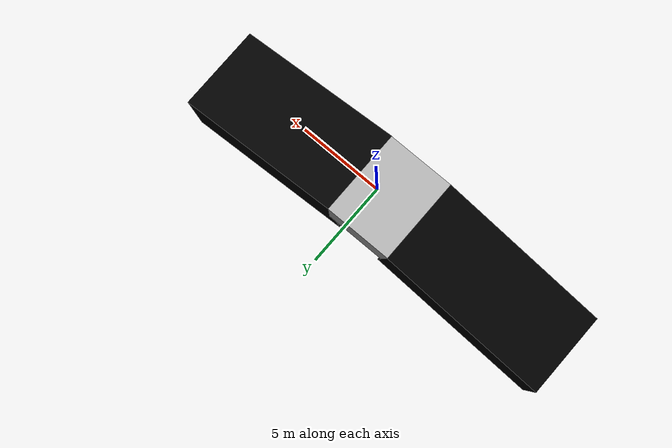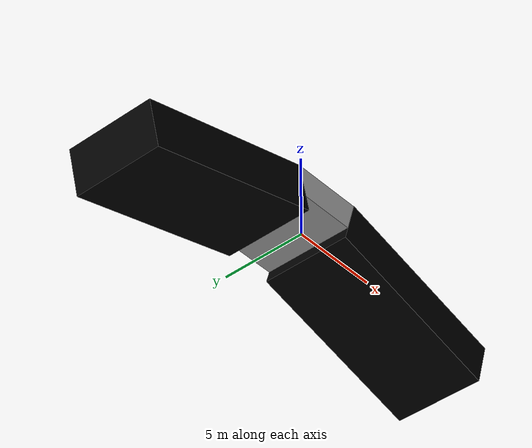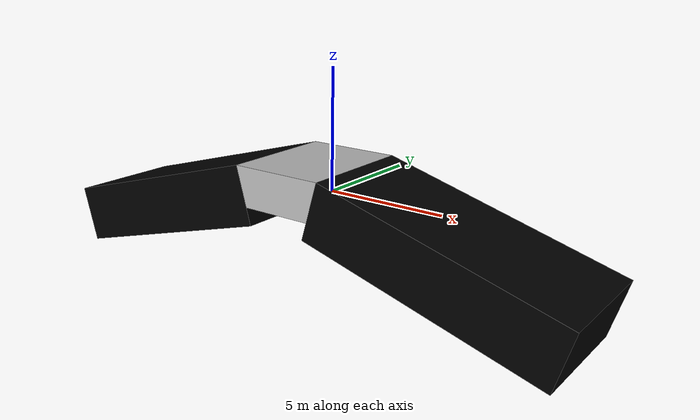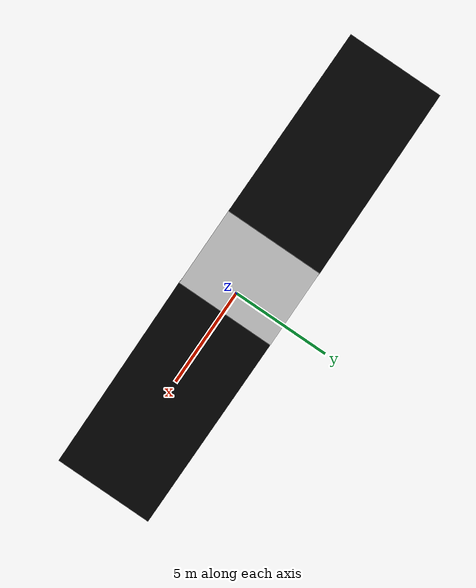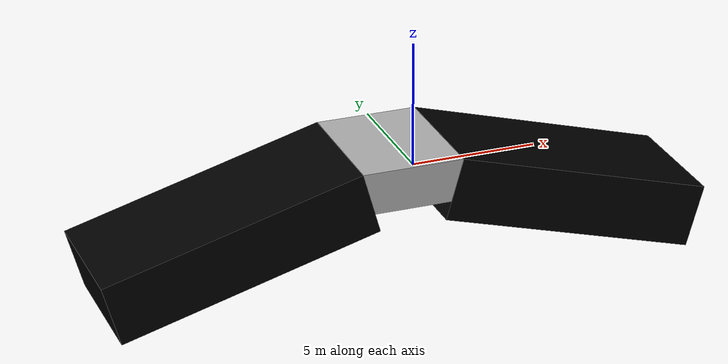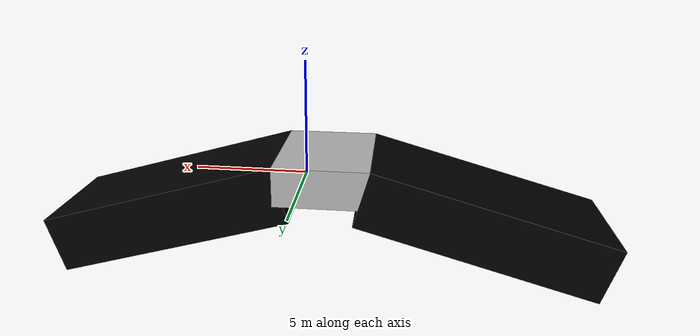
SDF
<?xml version='1.0'?>
<sdf version='1.7'>
  <model name='slope_ros2_paper'>
    <link name='slope_down'>
      <pose>5.84019 0.081427 -1.54904 0 0.2779 0</pose>
      <self_collide>0</self_collide>
      <kinematic>0</kinematic>
      <gravity>1</gravity>
      <enable_wind>0</enable_wind>
      <inertial>
        <inertia>
          <ixx>0</ixx>
          <ixy>0</ixy>
          <ixz>0</ixz>
          <iyy>0</iyy>
          <iyz>0</iyz>
          <izz>0</izz>
        </inertia>
        <mass>0</mass>
        <pose>0 0 0 0 -0 0</pose>
      </inertial>
      <visual name='visual'>
        <geometry>
          <box>
            <size>10.6012 5.12132 2.52711</size>
          </box>
        </geometry>
        <material>
          <shader type='pixel'>
            <normal_map>__default__</normal_map>
          </shader>
          <script>
            <name>ModelPreview_1::slope_down::visual_MATERIAL_</name>
          </script>
          <ambient>0 0 0 1</ambient>
          <diffuse>0 0 0 1</diffuse>
          <specular>0 0 0 1</specular>
          <emissive>0 0 0 1</emissive>
        </material>
        <pose>0 0 0 0 -0 0</pose>
        <transparency>0</transparency>
        <cast_shadows>1</cast_shadows>
      </visual>
      <collision name='collision'>
        <laser_retro>0</laser_retro>
        <max_contacts>10</max_contacts>
        <pose>0 0 0 0 -0 0</pose>
        <geometry>
          <box>
            <size>10.6012 5.12132 2.52711</size>
          </box>
        </geometry>
        <surface>
          <friction>
            <ode>
              <mu>1</mu>
              <mu2>1</mu2>
              <fdir1>0 0 0</fdir1>
              <slip1>0</slip1>
              <slip2>0</slip2>
            </ode>
            <torsional>
              <coefficient>1</coefficient>
              <patch_radius>0</patch_radius>
              <surface_radius>0</surface_radius>
              <use_patch_radius>1</use_patch_radius>
              <ode>
                <slip>0</slip>
              </ode>
            </torsional>
          </friction>
          <bounce>
            <restitution_coefficient>0</restitution_coefficient>
            <threshold>1e+06</threshold>
          </bounce>
          <contact>
            <collide_without_contact>0</collide_without_contact>
            <collide_without_contact_bitmask>1</collide_without_contact_bitmask>
            <collide_bitmask>1</collide_bitmask>
            <ode>
              <soft_cfm>0</soft_cfm>
              <soft_erp>0.2</soft_erp>
              <kp>1e+13</kp>
              <kd>1</kd>
              <max_vel>0.01</max_vel>
              <min_depth>0</min_depth>
            </ode>
            <bullet>
              <split_impulse>1</split_impulse>
              <split_impulse_penetration_threshold>-0.01</split_impulse_penetration_threshold>
              <soft_cfm>0</soft_cfm>
              <soft_erp>0.2</soft_erp>
              <kp>1e+13</kp>
              <kd>1</kd>
            </bullet>
          </contact>
        </surface>
      </collision>
    </link>
    <link name='slope_down_clone'>
      <pose>-7.70299 0.098646 -1.53856 0 -0.274841 0</pose>
      <self_collide>0</self_collide>
      <kinematic>0</kinematic>
      <gravity>1</gravity>
      <enable_wind>0</enable_wind>
      <inertial>
        <inertia>
          <ixx>0</ixx>
          <ixy>0</ixy>
          <ixz>0</ixz>
          <iyy>0</iyy>
          <iyz>0</iyz>
          <izz>0</izz>
        </inertia>
        <mass>0</mass>
        <pose>0 0 0 0 -0 0</pose>
      </inertial>
      <visual name='visual'>
        <geometry>
          <box>
            <size>10.6012 5.12132 2.52711</size>
          </box>
        </geometry>
        <material>
          <shader type='pixel'>
            <normal_map>__default__</normal_map>
          </shader>
          <script>
            <name>ModelPreview_1::slope_down_clone::visual_MATERIAL_</name>
          </script>
          <ambient>0 0 0 1</ambient>
          <diffuse>0 0 0 1</diffuse>
          <specular>0 0 0 1</specular>
          <emissive>0 0 0 1</emissive>
        </material>
        <pose>0 0 0 0 -0 0</pose>
        <transparency>0</transparency>
        <cast_shadows>1</cast_shadows>
      </visual>
      <collision name='collision'>
        <laser_retro>0</laser_retro>
        <max_contacts>10</max_contacts>
        <pose>0 0 0 0 -0 0</pose>
        <geometry>
          <box>
            <size>10.6012 5.12132 2.52711</size>
          </box>
        </geometry>
        <surface>
          <friction>
            <ode>
              <mu>1</mu>
              <mu2>1</mu2>
              <fdir1>0 0 0</fdir1>
              <slip1>0</slip1>
              <slip2>0</slip2>
            </ode>
            <torsional>
              <coefficient>1</coefficient>
              <patch_radius>0</patch_radius>
              <surface_radius>0</surface_radius>
              <use_patch_radius>1</use_patch_radius>
              <ode>
                <slip>0</slip>
              </ode>
            </torsional>
          </friction>
          <bounce>
            <restitution_coefficient>0</restitution_coefficient>
            <threshold>1e+06</threshold>
          </bounce>
          <contact>
            <collide_without_contact>0</collide_without_contact>
            <collide_without_contact_bitmask>1</collide_without_contact_bitmask>
            <collide_bitmask>1</collide_bitmask>
            <ode>
              <soft_cfm>0</soft_cfm>
              <soft_erp>0.2</soft_erp>
              <kp>1e+13</kp>
              <kd>1</kd>
              <max_vel>0.01</max_vel>
              <min_depth>0</min_depth>
            </ode>
            <bullet>
              <split_impulse>1</split_impulse>
              <split_impulse_penetration_threshold>-0.01</split_impulse_penetration_threshold>
              <soft_cfm>0</soft_cfm>
              <soft_erp>0.2</soft_erp>
              <kp>1e+13</kp>
              <kd>1</kd>
            </bullet>
          </contact>
        </surface>
      </collision>
    </link>
    <link name='slope_zero'>
      <pose>-0.925749 0.091754 0.271552 0 -0 0</pose>
      <self_collide>0</self_collide>
      <kinematic>0</kinematic>
      <gravity>1</gravity>
      <enable_wind>0</enable_wind>
      <inertial>
        <inertia>
          <ixx>0</ixx>
          <ixy>0</ixy>
          <ixz>0</ixz>
          <iyy>0</iyy>
          <iyz>0</iyz>
          <izz>0</izz>
        </inertia>
        <mass>0</mass>
        <pose>0 0 0 0 -0 0</pose>
      </inertial>
      <visual name='visual'>
        <geometry>
          <box>
            <size>4.02292 5.10715 1.69097</size>
          </box>
        </geometry>
        <material>
          <shader type='pixel'>
            <normal_map>__default__</normal_map>
          </shader>
        </material>
        <pose>0 0 0 0 -0 0</pose>
        <transparency>0</transparency>
        <cast_shadows>1</cast_shadows>
      </visual>
      <collision name='collision'>
        <laser_retro>0</laser_retro>
        <max_contacts>10</max_contacts>
        <pose>0 0 0 0 -0 0</pose>
        <geometry>
          <box>
            <size>4.02292 5.10715 1.69097</size>
          </box>
        </geometry>
        <surface>
          <friction>
            <ode>
              <mu>1</mu>
              <mu2>1</mu2>
              <fdir1>0 0 0</fdir1>
              <slip1>0</slip1>
              <slip2>0</slip2>
            </ode>
            <torsional>
              <coefficient>1</coefficient>
              <patch_radius>0</patch_radius>
              <surface_radius>0</surface_radius>
              <use_patch_radius>1</use_patch_radius>
              <ode>
                <slip>0</slip>
              </ode>
            </torsional>
          </friction>
          <bounce>
            <restitution_coefficient>0</restitution_coefficient>
            <threshold>1e+06</threshold>
          </bounce>
          <contact>
            <collide_without_contact>0</collide_without_contact>
            <collide_without_contact_bitmask>1</collide_without_contact_bitmask>
            <collide_bitmask>1</collide_bitmask>
            <ode>
              <soft_cfm>0</soft_cfm>
              <soft_erp>0.2</soft_erp>
              <kp>1e+13</kp>
              <kd>1</kd>
              <max_vel>0.01</max_vel>
              <min_depth>0</min_depth>
            </ode>
            <bullet>
              <split_impulse>1</split_impulse>
              <split_impulse_penetration_threshold>-0.01</split_impulse_penetration_threshold>
              <soft_cfm>0</soft_cfm>
              <soft_erp>0.2</soft_erp>
              <kp>1e+13</kp>
              <kd>1</kd>
            </bullet>
          </contact>
        </surface>
      </collision>
    </link>
    <static>1</static>
    <allow_auto_disable>1</allow_auto_disable>
  </model>
</sdf>
